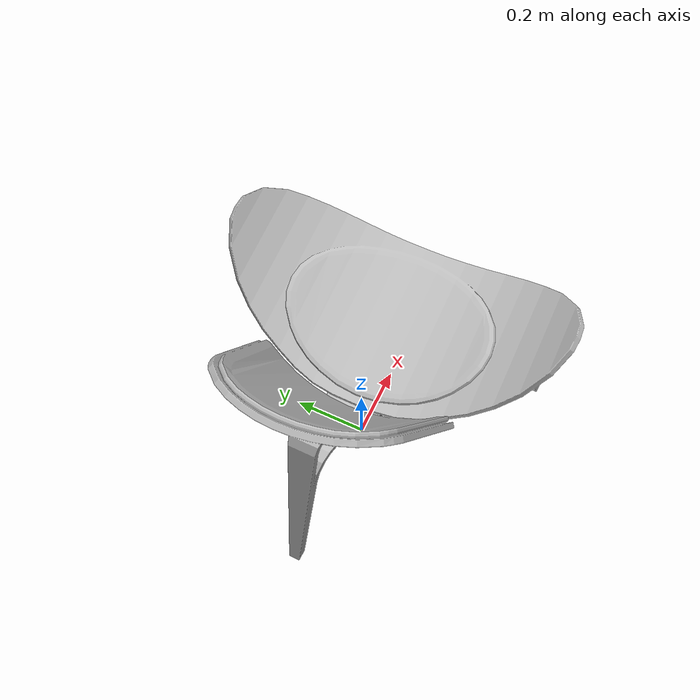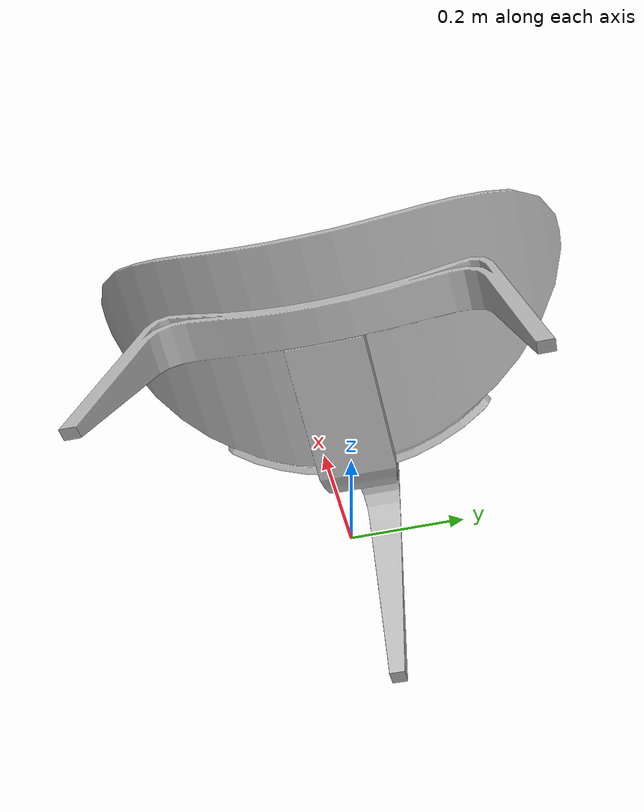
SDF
<?xml version='1.0'?>
<sdf version='1.4'>
  <model name='s__1701'>
    <pose>0 0 0 0 0 0</pose>
    <static>true</static>
    <link name='link'>
      <collision name='collision'>
        <pose>0 0 0 0 0 0</pose>
        <geometry>
          <box>
            <size>0.82 0.91 2</size>
          </box>
        </geometry>
      </collision>
      <visual name='visual'>
        <pose>0 0 0 0 0 0</pose>
        <geometry>
          <mesh><uri>model://s__1701/s__1701.dae</uri></mesh>
        </geometry>
      </visual>
    </link>
  </model>
</sdf>
